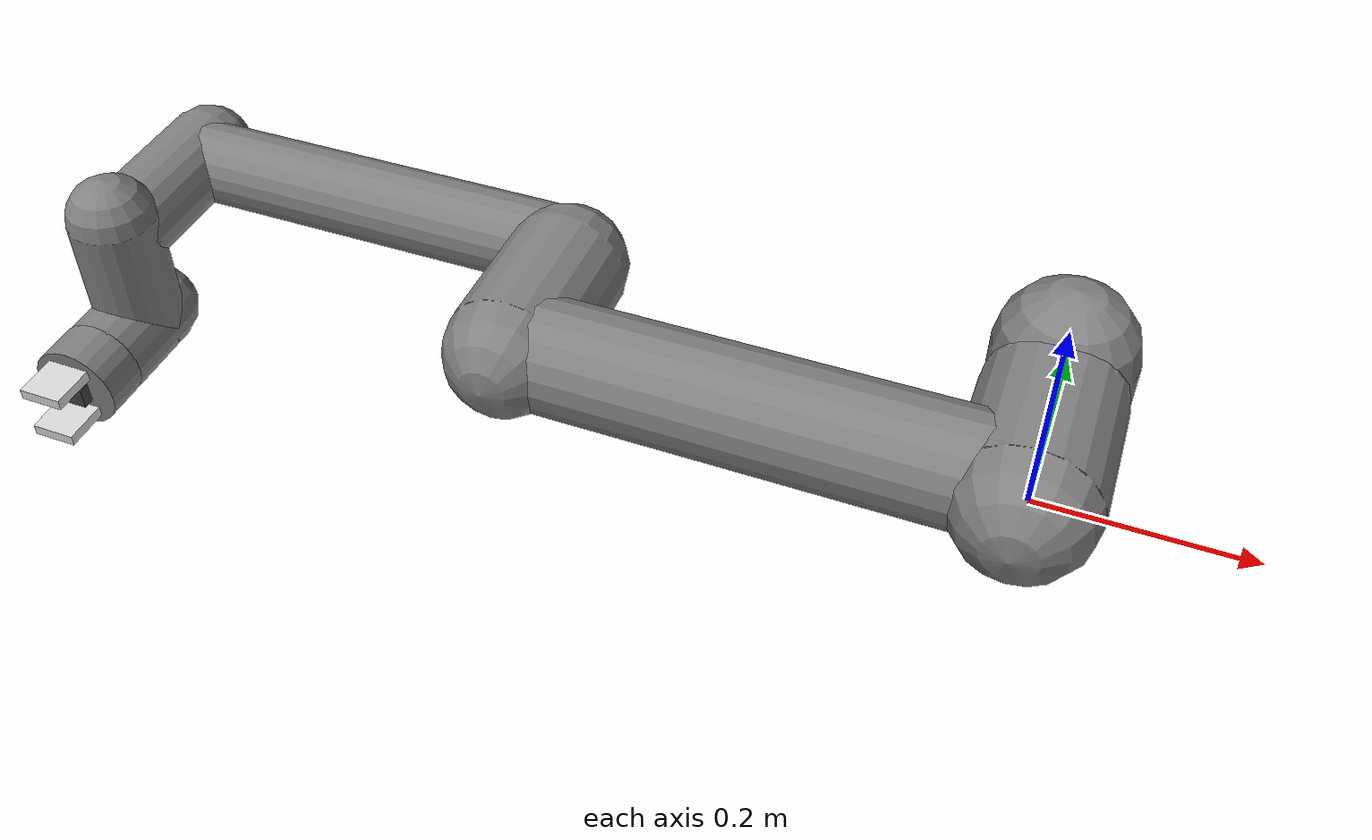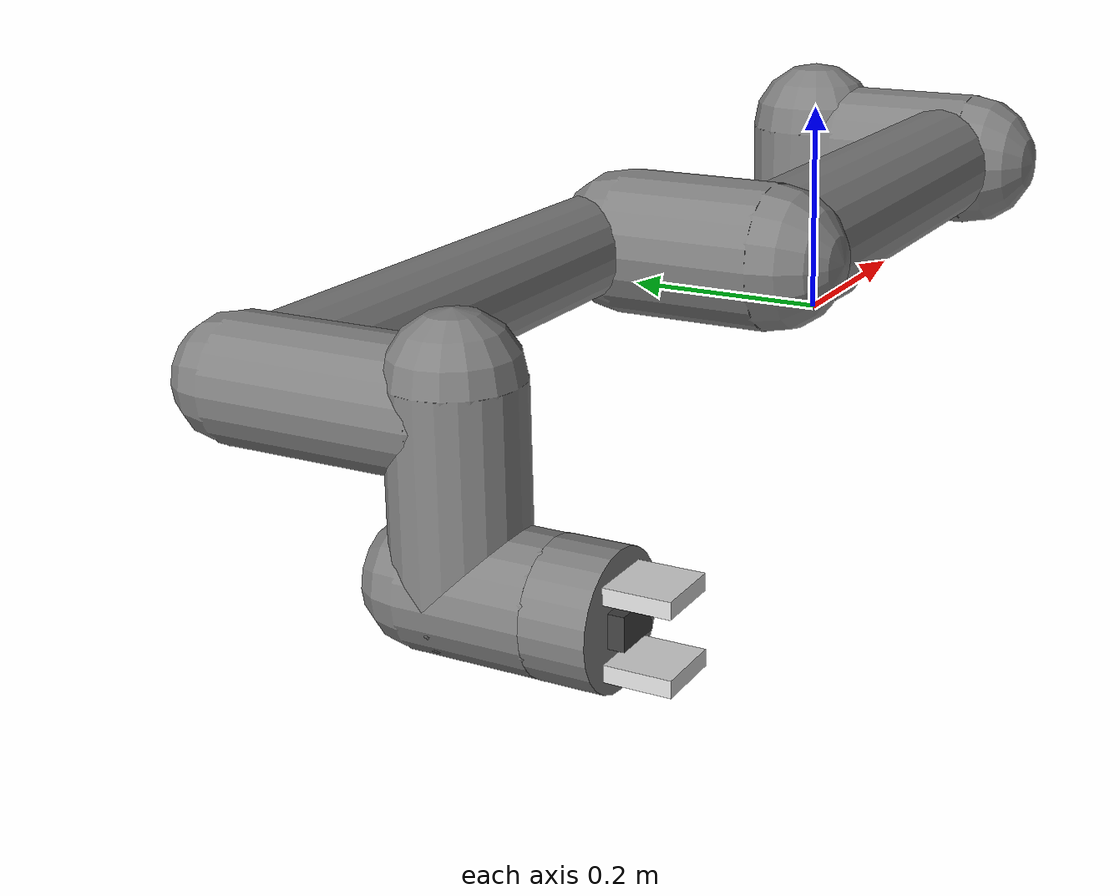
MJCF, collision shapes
<mujoco model="ur5e">
  <compiler angle="radian" meshdir="assets/"/>

  <option integrator="implicitfast"/>

  <size nkey="1"/>

  <default>
    <default class="ur5e">
      <material shininess="0.25"/>
      <joint range="-6.28319 6.28319" armature="0.1"/>
      <site size="0.001 0.005 0.005" group="4" rgba="0.5 0.5 0.5 0.3"/>
      <general ctrlrange="-6.2831 6.2831" forcerange="-150 150" biastype="affine" gainprm="2000" biasprm="0 -2000 -400"/>
      <default class="size3">
        <default class="size3_limited">
          <joint range="-3.1415 3.1415"/>
          <general ctrlrange="-3.1415 3.1415"/>
        </default>
      </default>
      <default class="size1">
        <general forcerange="-28 28" gainprm="500" biasprm="0 -500 -100"/>
      </default>
      <default class="visual">
        <geom type="mesh" contype="0" conaffinity="0" group="2"/>
      </default>
      <default class="collision">
        <geom type="capsule" group="3"/>
        <default class="eef_collision">
          <geom type="cylinder"/>
        </default>
      </default>
    </default>
  </default>

  <asset>
    <material name="black" class="ur5e" rgba="0.033 0.033 0.033 1"/>
    <material name="jointgray" class="ur5e" rgba="0.278 0.278 0.278 1"/>
    <material name="linkgray" class="ur5e" rgba="0.82 0.82 0.82 1"/>
    <material name="urblue" class="ur5e" rgba="0.49 0.678 0.8 1"/>
    <mesh name="base_0" content_type="model/obj" file="base_0.obj"/>
    <mesh name="base_1" content_type="model/obj" file="base_1.obj"/>
    <mesh name="shoulder_0" content_type="model/obj" file="shoulder_0.obj"/>
    <mesh name="shoulder_1" content_type="model/obj" file="shoulder_1.obj"/>
    <mesh name="shoulder_2" content_type="model/obj" file="shoulder_2.obj"/>
    <mesh name="upperarm_0" content_type="model/obj" file="upperarm_0.obj"/>
    <mesh name="upperarm_1" content_type="model/obj" file="upperarm_1.obj"/>
    <mesh name="upperarm_2" content_type="model/obj" file="upperarm_2.obj"/>
    <mesh name="upperarm_3" content_type="model/obj" file="upperarm_3.obj"/>
    <mesh name="forearm_0" content_type="model/obj" file="forearm_0.obj"/>
    <mesh name="forearm_1" content_type="model/obj" file="forearm_1.obj"/>
    <mesh name="forearm_2" content_type="model/obj" file="forearm_2.obj"/>
    <mesh name="forearm_3" content_type="model/obj" file="forearm_3.obj"/>
    <mesh name="wrist1_0" content_type="model/obj" file="wrist1_0.obj"/>
    <mesh name="wrist1_1" content_type="model/obj" file="wrist1_1.obj"/>
    <mesh name="wrist1_2" content_type="model/obj" file="wrist1_2.obj"/>
    <mesh name="wrist2_0" content_type="model/obj" file="wrist2_0.obj"/>
    <mesh name="wrist2_1" content_type="model/obj" file="wrist2_1.obj"/>
    <mesh name="wrist2_2" content_type="model/obj" file="wrist2_2.obj"/>
    <mesh name="wrist3" content_type="model/obj" file="wrist3.obj"/>
  </asset>

  <worldbody>
    <light name="spotlight" target="wrist_2_link" pos="0 -1 2" dir="0 0 -1" mode="targetbodycom"/>
    <body name="base" childclass="ur5e" quat="0 0 0 -1">
      <inertial pos="0 0 0" mass="4" diaginertia="0.00443333 0.00443333 0.0072"/>
      <geom class="visual" material="black" mesh="base_0"/>
      <geom class="visual" material="jointgray" mesh="base_1"/>
      <body name="shoulder_link" pos="0 0 0.163">
        <inertial pos="0 0 0" mass="3.7" diaginertia="0.0102675 0.0102675 0.00666"/>
        <joint name="shoulder_pan_joint" class="size3" pos="0 0 0" axis="0 0 1"/>
        <geom class="visual" material="urblue" mesh="shoulder_0"/>
        <geom class="visual" material="black" mesh="shoulder_1"/>
        <geom class="visual" material="jointgray" mesh="shoulder_2"/>
        <geom class="collision" size="0.06 0.06" pos="0 0 -0.04"/>
        <body name="upper_arm_link" pos="0 0.138 0" quat="0.707107 0 0.707107 0">
          <inertial pos="0 0 0.2125" mass="8.393" diaginertia="0.133886 0.133886 0.0151074"/>
          <joint name="shoulder_lift_joint" class="size3" pos="0 0 0" axis="0 1 0"/>
          <geom class="visual" material="linkgray" mesh="upperarm_0"/>
          <geom class="visual" material="black" mesh="upperarm_1"/>
          <geom class="visual" material="jointgray" mesh="upperarm_2"/>
          <geom class="visual" material="urblue" mesh="upperarm_3"/>
          <geom class="collision" size="0.06 0.06" pos="0 -0.04 0" quat="0.707107 0.707107 0 0"/>
          <geom class="collision" size="0.05 0.2" pos="0 0 0.2"/>
          <body name="forearm_link" pos="0 -0.131 0.425">
            <inertial pos="0 0 0.196" mass="2.275" diaginertia="0.0311796 0.0311796 0.004095"/>
            <joint name="elbow_joint" class="size3_limited" pos="0 0 0" axis="0 1 0"/>
            <geom class="visual" material="urblue" mesh="forearm_0"/>
            <geom class="visual" material="linkgray" mesh="forearm_1"/>
            <geom class="visual" material="black" mesh="forearm_2"/>
            <geom class="visual" material="jointgray" mesh="forearm_3"/>
            <geom class="collision" size="0.055 0.06" pos="0 0.08 0" quat="0.707107 0.707107 0 0"/>
            <geom class="collision" size="0.038 0.19" pos="0 0 0.2"/>
            <body name="wrist_1_link" pos="0 0 0.392" quat="0.707107 0 0.707107 0">
              <inertial pos="0 0.127 0" mass="1.219" diaginertia="0.0025599 0.0025599 0.0021942"/>
              <joint name="wrist_1_joint" class="size1" pos="0 0 0" axis="0 1 0"/>
              <geom class="visual" material="black" mesh="wrist1_0"/>
              <geom class="visual" material="urblue" mesh="wrist1_1"/>
              <geom class="visual" material="jointgray" mesh="wrist1_2"/>
              <geom class="collision" size="0.04 0.07" pos="0 0.05 0" quat="0.707107 0.707107 0 0"/>
              <body name="wrist_2_link" pos="0 0.127 0">
                <inertial pos="0 0 0.1" mass="1.219" diaginertia="0.0025599 0.0025599 0.0021942"/>
                <joint name="wrist_2_joint" class="size1" pos="0 0 0" axis="0 0 1"/>
                <geom class="visual" material="black" mesh="wrist2_0"/>
                <geom class="visual" material="urblue" mesh="wrist2_1"/>
                <geom class="visual" material="jointgray" mesh="wrist2_2"/>
                <geom class="collision" size="0.04 0.06" pos="0 0 0.04"/>
                <geom class="collision" size="0.04 0.04" pos="0 0.02 0.1" quat="0.707107 0.707107 0 0"/>
                <body name="wrist_3_link" pos="0 0 0.1">
                  <inertial pos="0 0.0771683 0" quat="0.707107 0 0 0.707107" mass="0.1889" diaginertia="0.000132134 9.90863e-05 9.90863e-05"/>
                  <joint name="wrist_3_joint" class="size1" pos="0 0 0" axis="0 1 0"/>
                  <geom class="visual" material="linkgray" mesh="wrist3"/>
                  <geom class="eef_collision" size="0.04 0.02" pos="0 0.08 0" quat="0.707107 0.707107 0 0"/>
                  <site name="attachment_site" pos="0 0.1 0" quat="-0.707107 0.707107 0 0"/>
                  <body name="gripper_base" pos="0 0.1 0" quat="-0.707107 0.707107 0 0">
                    <geom size="0.015 0.01 0.01" type="box" contype="0" conaffinity="0" rgba="0.25 0.25 0.25 1"/>
                    <body name="left_finger" pos="0 0.022 0">
                      <joint name="left_finger_slide" pos="0 0 0" axis="1 0 0" type="slide" range="-0.02 0.02" armature="0.01"/>
                      <geom size="0.02 0.005 0.04" type="box" contype="0" conaffinity="0" rgba="0.85 0.85 0.85 1"/>
                    </body>
                    <body name="right_finger" pos="0 -0.022 0">
                      <joint name="right_finger_slide" pos="0 0 0" axis="1 0 0" type="slide" range="-0.02 0.02" armature="0.01"/>
                      <geom size="0.02 0.005 0.04" type="box" contype="0" conaffinity="0" rgba="0.85 0.85 0.85 1"/>
                    </body>
                  </body>
                </body>
              </body>
            </body>
          </body>
        </body>
      </body>
    </body>
  </worldbody>

  <actuator>
    <general name="shoulder_pan" class="size3" joint="shoulder_pan_joint"/>
    <general name="shoulder_lift" class="size3" joint="shoulder_lift_joint"/>
    <general name="elbow" class="size3_limited" joint="elbow_joint"/>
    <general name="wrist_1" class="size1" joint="wrist_1_joint"/>
    <general name="wrist_2" class="size1" joint="wrist_2_joint"/>
    <general name="wrist_3" class="size1" joint="wrist_3_joint"/>
    <general name="left_finger_ctrl" joint="left_finger_slide" ctrlrange="-0.02 0.02" biastype="affine" gainprm="300" biasprm="0 -300"/>
    <general name="right_finger_ctrl" joint="right_finger_slide" ctrlrange="-0.02 0.02" biastype="affine" gainprm="300" biasprm="0 -300"/>
  </actuator>

  <sensor>
    <jointpos joint="left_finger_slide" name="left_finger_pos"/>
    <jointpos joint="right_finger_slide" name="right_finger_pos"/>
  </sensor>

  <keyframe>
    <key name="home" qpos="-1.5708 -1.5708 1.5708 -1.5708 -1.5708 0 -0.02 0.02" ctrl="-1.5708 -1.5708 1.5708 -1.5708 -1.5708 0 -0.02 0.02"/>
  </keyframe>
</mujoco>
